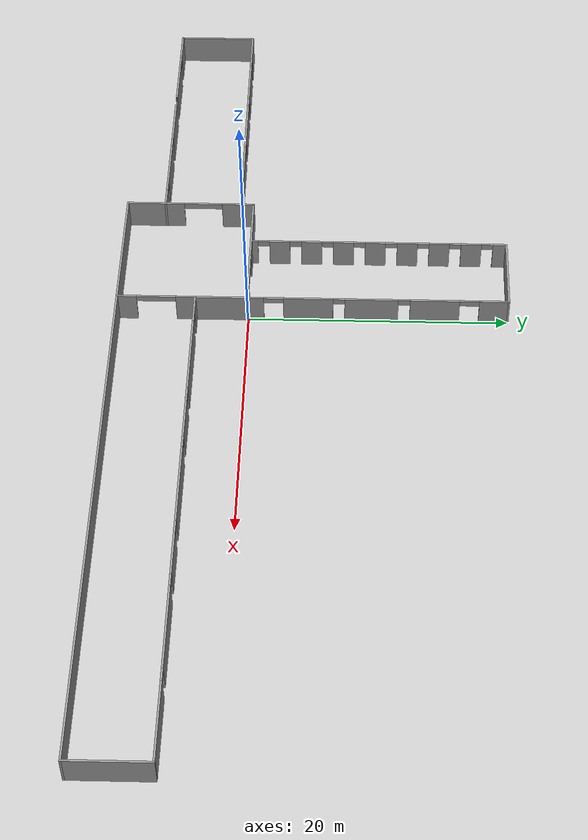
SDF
<sdf version="1.4">
 <world name="default">
  <light name="sun" type="directional">
   <pose>0 0 10 0 -0 0</pose>
   <diffuse>0.8 0.8 0.8 1</diffuse>
   <specular>0.2 0.2 0.2 1</specular>
   <attenuation>
    <range>1000</range>
    <constant>0.9</constant>
    <linear>0.01</linear>
    <quadratic>0.001</quadratic>
   </attenuation>
   <direction>-0.5 0.1 -0.9</direction>
  </light>
  <model name="ground_plane">
   <static>1</static>
   <link name="link">
    <collision name="collision">
     <geometry><plane><normal>0 0 1</normal><size>100 100</size></plane></geometry>
     <surface><friction><ode><mu>100</mu><mu2>50</mu2></ode></friction></surface>
    </collision>
    <visual name="visual">
     <cast_shadows>0</cast_shadows>
     <geometry><plane><normal>0 0 1</normal><size>100 100</size></plane></geometry>
     <material>
      <script><uri>file://media/materials/scripts/gazebo.material</uri><name>Gazebo/Grey</name></script>
     </material>
    </visual>
    <velocity_decay><linear>0</linear><angular>0</angular></velocity_decay>
   </link>
  </model>
  <physics type="ode">
   <max_step_size>0.001</max_step_size>
   <real_time_factor>1</real_time_factor>
   <real_time_update_rate>1000</real_time_update_rate>
   <gravity>0 0 -9.8</gravity>
  </physics>
  <scene><ambient>0.4 0.4 0.4 1</ambient><background>0.7 0.7 0.7 1</background><shadows>1</shadows></scene>
  <spherical_coordinates>
   <surface_model>EARTH_WGS84</surface_model>
   <latitude_deg>0</latitude_deg>
   <longitude_deg>0</longitude_deg>
   <elevation>0</elevation>
   <heading_deg>0</heading_deg>
  </spherical_coordinates>
  <model name="First_three_corridors">
   <pose>5 5 0 0 -0 0</pose>
   <link name="Wall_0">
    <pose>15 -9 0 0 -0 0</pose>
    <visual name="Wall_0_Visual_0">
     <pose>-19.2625 0 1.25 0 -0 0</pose>
     <geometry><box><size>1.625 0.15 2.5</size></box></geometry>
     <material>
      <script><uri>file://media/materials/scripts/gazebo.material</uri><name>Gazebo/Grey</name></script>
      <ambient>1 1 1 1</ambient>
     </material>
    </visual>
    <collision name="Wall_0_Collision_0">
     <geometry><box><size>1.625 0.15 2.5</size></box></geometry>
     <pose>-19.2625 0 1.25 0 -0 0</pose>
    </collision>
    <visual name="Wall_0_Visual_1">
     <pose>-14.25 0 1.25 0 -0 0</pose>
     <geometry><box><size>6.6 0.15 2.5</size></box></geometry>
     <material>
      <script><uri>file://media/materials/scripts/gazebo.material</uri><name>Gazebo/Grey</name></script>
      <ambient>1 1 1 1</ambient>
     </material>
    </visual>
    <collision name="Wall_0_Collision_1">
     <geometry><box><size>6.6 0.15 2.5</size></box></geometry>
     <pose>-14.25 0 1.25 0 -0 0</pose>
    </collision>
    <visual name="Wall_0_Visual_2">
     <pose>-8.25 0 1.25 0 -0 0</pose>
     <geometry><box><size>3.6 0.15 2.5</size></box></geometry>
     <material>
      <script><uri>file://media/materials/scripts/gazebo.material</uri><name>Gazebo/Grey</name></script>
      <ambient>1 1 1 1</ambient>
     </material>
    </visual>
    <collision name="Wall_0_Collision_2">
     <geometry><box><size>3.6 0.15 2.5</size></box></geometry>
     <pose>-8.25 0 1.25 0 -0 0</pose>
    </collision>
    <visual name="Wall_0_Visual_3">
     <pose>-2.25 0 1.25 0 -0 0</pose>
     <geometry><box><size>6.6 0.15 2.5</size></box></geometry>
     <material>
      <script><uri>file://media/materials/scripts/gazebo.material</uri><name>Gazebo/Grey</name></script>
      <ambient>1 1 1 1</ambient>
     </material>
    </visual>
    <collision name="Wall_0_Collision_3">
     <geometry><box><size>6.6 0.15 2.5</size></box></geometry>
     <pose>-2.25 0 1.25 0 -0 0</pose>
    </collision>
    <visual name="Wall_0_Visual_4">
     <pose>3.75 0 1.25 0 -0 0</pose>
     <geometry><box><size>3.6 0.15 2.5</size></box></geometry>
     <material>
      <script><uri>file://media/materials/scripts/gazebo.material</uri><name>Gazebo/Grey</name></script>
      <ambient>1 1 1 1</ambient>
     </material>
    </visual>
    <collision name="Wall_0_Collision_4">
     <geometry><box><size>3.6 0.15 2.5</size></box></geometry>
     <pose>3.75 0 1.25 0 -0 0</pose>
    </collision>
    <visual name="Wall_0_Visual_5">
     <pose>9.75 0 1.25 0 -0 0</pose>
     <geometry><box><size>6.6 0.15 2.5</size></box></geometry>
     <material>
      <script><uri>file://media/materials/scripts/gazebo.material</uri><name>Gazebo/Grey</name></script>
      <ambient>1 1 1 1</ambient>
     </material>
    </visual>
    <collision name="Wall_0_Collision_5">
     <geometry><box><size>6.6 0.15 2.5</size></box></geometry>
     <pose>9.75 0 1.25 0 -0 0</pose>
    </collision>
    <visual name="Wall_0_Visual_6">
     <pose>17.0125 0 1.25 0 -0 0</pose>
     <geometry><box><size>6.125 0.15 2.5</size></box></geometry>
     <material>
      <script><uri>file://media/materials/scripts/gazebo.material</uri><name>Gazebo/Grey</name></script>
      <ambient>1 1 1 1</ambient>
     </material>
    </visual>
    <collision name="Wall_0_Collision_6">
     <geometry><box><size>6.125 0.15 2.5</size></box></geometry>
     <pose>17.0125 0 1.25 0 -0 0</pose>
    </collision>
    <visual name="Wall_0_Visual_7">
     <pose>-18 0 2.25 0 -0 0</pose>
     <geometry><box><size>0.9 0.15 0.5</size></box></geometry>
     <material>
      <script><uri>file://media/materials/scripts/gazebo.material</uri><name>Gazebo/Grey</name></script>
      <ambient>1 1 1 1</ambient>
     </material>
    </visual>
    <collision name="Wall_0_Collision_7">
     <geometry><box><size>0.9 0.15 0.5</size></box></geometry>
     <pose>-18 0 2.25 0 -0 0</pose>
    </collision>
    <visual name="Wall_0_Visual_8">
     <pose>-10.5 0 2.25 0 -0 0</pose>
     <geometry><box><size>0.9 0.15 0.5</size></box></geometry>
     <material>
      <script><uri>file://media/materials/scripts/gazebo.material</uri><name>Gazebo/Grey</name></script>
      <ambient>1 1 1 1</ambient>
     </material>
    </visual>
    <collision name="Wall_0_Collision_8">
     <geometry><box><size>0.9 0.15 0.5</size></box></geometry>
     <pose>-10.5 0 2.25 0 -0 0</pose>
    </collision>
    <visual name="Wall_0_Visual_9">
     <pose>-6 0 2.25 0 -0 0</pose>
     <geometry><box><size>0.9 0.15 0.5</size></box></geometry>
     <material>
      <script><uri>file://media/materials/scripts/gazebo.material</uri><name>Gazebo/Grey</name></script>
      <ambient>1 1 1 1</ambient>
     </material>
    </visual>
    <collision name="Wall_0_Collision_9">
     <geometry><box><size>0.9 0.15 0.5</size></box></geometry>
     <pose>-6 0 2.25 0 -0 0</pose>
    </collision>
    <visual name="Wall_0_Visual_10">
     <pose>1.5 0 2.25 0 -0 0</pose>
     <geometry><box><size>0.9 0.15 0.5</size></box></geometry>
     <material>
      <script><uri>file://media/materials/scripts/gazebo.material</uri><name>Gazebo/Grey</name></script>
      <ambient>1 1 1 1</ambient>
     </material>
    </visual>
    <collision name="Wall_0_Collision_10">
     <geometry><box><size>0.9 0.15 0.5</size></box></geometry>
     <pose>1.5 0 2.25 0 -0 0</pose>
    </collision>
    <visual name="Wall_0_Visual_11">
     <pose>6 0 2.25 0 -0 0</pose>
     <geometry><box><size>0.9 0.15 0.5</size></box></geometry>
     <material>
      <script><uri>file://media/materials/scripts/gazebo.material</uri><name>Gazebo/Grey</name></script>
      <ambient>1 1 1 1</ambient>
     </material>
    </visual>
    <collision name="Wall_0_Collision_11">
     <geometry><box><size>0.9 0.15 0.5</size></box></geometry>
     <pose>6 0 2.25 0 -0 0</pose>
    </collision>
    <visual name="Wall_0_Visual_12">
     <pose>13.5 0 2.25 0 -0 0</pose>
     <geometry><box><size>0.9 0.15 0.5</size></box></geometry>
     <material>
      <script><uri>file://media/materials/scripts/gazebo.material</uri><name>Gazebo/Grey</name></script>
      <ambient>1 1 1 1</ambient>
     </material>
    </visual>
    <collision name="Wall_0_Collision_12">
     <geometry><box><size>0.9 0.15 0.5</size></box></geometry>
     <pose>13.5 0 2.25 0 -0 0</pose>
    </collision>
    <velocity_decay><linear>0</linear><angular>0</angular></velocity_decay>
   </link>
   <link name="Wall_1">
    <collision name="Wall_1_Collision">
     <geometry><box><size>6.15 0.15 2.5</size></box></geometry>
     <pose>0 0 1.25 0 -0 0</pose>
    </collision>
    <visual name="Wall_1_Visual">
     <pose>0 0 1.25 0 -0 0</pose>
     <geometry><box><size>6.15 0.15 2.5</size></box></geometry>
     <material>
      <script><uri>file://media/materials/scripts/gazebo.material</uri><name>Gazebo/Grey</name></script>
      <ambient>1 1 1 1</ambient>
     </material>
    </visual>
    <pose>35 -12 0 0 0 -1.5708</pose>
    <velocity_decay><linear>0</linear><angular>0</angular></velocity_decay>
   </link>
   <link name="Wall_10">
    <pose>-5 5 0 0 -0 1.5708</pose>
    <visual name="Wall_10_Visual_0">
     <pose>-9.4125 0 1.25 0 -0 0</pose>
     <geometry><box><size>1.325 0.15 2.5</size></box></geometry>
     <material>
      <script><uri>file://media/materials/scripts/gazebo.material</uri><name>Gazebo/Grey</name></script>
      <ambient>1 1 1 1</ambient>
     </material>
    </visual>
    <collision name="Wall_10_Collision_0">
     <geometry><box><size>1.325 0.15 2.5</size></box></geometry>
     <pose>-9.4125 0 1.25 0 -0 0</pose>
    </collision>
    <visual name="Wall_10_Visual_1">
     <pose>-5.35 0 1.25 0 -0 0</pose>
     <geometry><box><size>3.8 0.15 2.5</size></box></geometry>
     <material>
      <script><uri>file://media/materials/scripts/gazebo.material</uri><name>Gazebo/Grey</name></script>
      <ambient>1 1 1 1</ambient>
     </material>
    </visual>
    <collision name="Wall_10_Collision_1">
     <geometry><box><size>3.8 0.15 2.5</size></box></geometry>
     <pose>-5.35 0 1.25 0 -0 0</pose>
    </collision>
    <visual name="Wall_10_Visual_2">
     <pose>-0.5 0 1.25 0 -0 0</pose>
     <geometry><box><size>4.1 0.15 2.5</size></box></geometry>
     <material>
      <script><uri>file://media/materials/scripts/gazebo.material</uri><name>Gazebo/Grey</name></script>
      <ambient>1 1 1 1</ambient>
     </material>
    </visual>
    <collision name="Wall_10_Collision_2">
     <geometry><box><size>4.1 0.15 2.5</size></box></geometry>
     <pose>-0.5 0 1.25 0 -0 0</pose>
    </collision>
    <visual name="Wall_10_Visual_3">
     <pose>4.35 0 1.25 0 -0 0</pose>
     <geometry><box><size>3.8 0.15 2.5</size></box></geometry>
     <material>
      <script><uri>file://media/materials/scripts/gazebo.material</uri><name>Gazebo/Grey</name></script>
      <ambient>1 1 1 1</ambient>
     </material>
    </visual>
    <collision name="Wall_10_Collision_3">
     <geometry><box><size>3.8 0.15 2.5</size></box></geometry>
     <pose>4.35 0 1.25 0 -0 0</pose>
    </collision>
    <visual name="Wall_10_Visual_4">
     <pose>8.9125 0 1.25 0 -0 0</pose>
     <geometry><box><size>2.325 0.15 2.5</size></box></geometry>
     <material>
      <script><uri>file://media/materials/scripts/gazebo.material</uri><name>Gazebo/Grey</name></script>
      <ambient>1 1 1 1</ambient>
     </material>
    </visual>
    <collision name="Wall_10_Collision_4">
     <geometry><box><size>2.325 0.15 2.5</size></box></geometry>
     <pose>8.9125 0 1.25 0 -0 0</pose>
    </collision>
    <visual name="Wall_10_Visual_5">
     <pose>-8 0 2.25 0 -0 0</pose>
     <geometry><box><size>1.5 0.15 0.5</size></box></geometry>
     <material>
      <script><uri>file://media/materials/scripts/gazebo.material</uri><name>Gazebo/Grey</name></script>
      <ambient>1 1 1 1</ambient>
     </material>
    </visual>
    <collision name="Wall_10_Collision_5">
     <geometry><box><size>1.5 0.15 0.5</size></box></geometry>
     <pose>-8 0 2.25 0 -0 0</pose>
    </collision>
    <visual name="Wall_10_Visual_6">
     <pose>-3 0 2.25 0 -0 0</pose>
     <geometry><box><size>0.9 0.15 0.5</size></box></geometry>
     <material>
      <script><uri>file://media/materials/scripts/gazebo.material</uri><name>Gazebo/Grey</name></script>
      <ambient>1 1 1 1</ambient>
     </material>
    </visual>
    <collision name="Wall_10_Collision_6">
     <geometry><box><size>0.9 0.15 0.5</size></box></geometry>
     <pose>-3 0 2.25 0 -0 0</pose>
    </collision>
    <visual name="Wall_10_Visual_7">
     <pose>2 0 2.25 0 -0 0</pose>
     <geometry><box><size>0.9 0.15 0.5</size></box></geometry>
     <material>
      <script><uri>file://media/materials/scripts/gazebo.material</uri><name>Gazebo/Grey</name></script>
      <ambient>1 1 1 1</ambient>
     </material>
    </visual>
    <collision name="Wall_10_Collision_7">
     <geometry><box><size>0.9 0.15 0.5</size></box></geometry>
     <pose>2 0 2.25 0 -0 0</pose>
    </collision>
    <visual name="Wall_10_Visual_8">
     <pose>7 0 2.25 0 -0 0</pose>
     <geometry><box><size>1.5 0.15 0.5</size></box></geometry>
     <material>
      <script><uri>file://media/materials/scripts/gazebo.material</uri><name>Gazebo/Grey</name></script>
      <ambient>1 1 1 1</ambient>
     </material>
    </visual>
    <collision name="Wall_10_Collision_8">
     <geometry><box><size>1.5 0.15 0.5</size></box></geometry>
     <pose>7 0 2.25 0 -0 0</pose>
    </collision>
    <velocity_decay><linear>0</linear><angular>0</angular></velocity_decay>
   </link>
   <link name="Wall_11">
    <collision name="Wall_11_Collision">
     <geometry><box><size>6.15 0.15 2.5</size></box></geometry>
     <pose>0 0 1.25 0 -0 0</pose>
    </collision>
    <visual name="Wall_11_Visual">
     <pose>0 0 1.25 0 -0 0</pose>
     <geometry><box><size>6.15 0.15 2.5</size></box></geometry>
     <material>
      <script><uri>file://media/materials/scripts/gazebo.material</uri><name>Gazebo/Grey</name></script>
      <ambient>1 1 1 1</ambient>
     </material>
    </visual>
    <pose>-8 15 0 0 -0 3.14159</pose>
    <velocity_decay><linear>0</linear><angular>0</angular></velocity_decay>
   </link>
   <link name="Wall_12">
    <pose>-11 5 0 0 0 -1.5708</pose>
    <visual name="Wall_12_Visual_0">
     <pose>-9.5125 0 1.25 0 -0 0</pose>
     <geometry><box><size>1.125 0.15 2.5</size></box></geometry>
     <material>
      <script><uri>file://media/materials/scripts/gazebo.material</uri><name>Gazebo/Grey</name></script>
      <ambient>1 1 1 1</ambient>
     </material>
    </visual>
    <collision name="Wall_12_Collision_0">
     <geometry><box><size>1.125 0.15 2.5</size></box></geometry>
     <pose>-9.5125 0 1.25 0 -0 0</pose>
    </collision>
    <visual name="Wall_12_Visual_1">
     <pose>-7.25 0 1.25 0 -0 0</pose>
     <geometry><box><size>1.6 0.15 2.5</size></box></geometry>
     <material>
      <script><uri>file://media/materials/scripts/gazebo.material</uri><name>Gazebo/Grey</name></script>
      <ambient>1 1 1 1</ambient>
     </material>
    </visual>
    <collision name="Wall_12_Collision_1">
     <geometry><box><size>1.6 0.15 2.5</size></box></geometry>
     <pose>-7.25 0 1.25 0 -0 0</pose>
    </collision>
    <visual name="Wall_12_Visual_2">
     <pose>-4.75 0 1.25 0 -0 0</pose>
     <geometry><box><size>1.6 0.15 2.5</size></box></geometry>
     <material>
      <script><uri>file://media/materials/scripts/gazebo.material</uri><name>Gazebo/Grey</name></script>
      <ambient>1 1 1 1</ambient>
     </material>
    </visual>
    <collision name="Wall_12_Collision_2">
     <geometry><box><size>1.6 0.15 2.5</size></box></geometry>
     <pose>-4.75 0 1.25 0 -0 0</pose>
    </collision>
    <visual name="Wall_12_Visual_3">
     <pose>-2.25 0 1.25 0 -0 0</pose>
     <geometry><box><size>1.6 0.15 2.5</size></box></geometry>
     <material>
      <script><uri>file://media/materials/scripts/gazebo.material</uri><name>Gazebo/Grey</name></script>
      <ambient>1 1 1 1</ambient>
     </material>
    </visual>
    <collision name="Wall_12_Collision_3">
     <geometry><box><size>1.6 0.15 2.5</size></box></geometry>
     <pose>-2.25 0 1.25 0 -0 0</pose>
    </collision>
    <visual name="Wall_12_Visual_4">
     <pose>0.25 0 1.25 0 -0 0</pose>
     <geometry><box><size>1.6 0.15 2.5</size></box></geometry>
     <material>
      <script><uri>file://media/materials/scripts/gazebo.material</uri><name>Gazebo/Grey</name></script>
      <ambient>1 1 1 1</ambient>
     </material>
    </visual>
    <collision name="Wall_12_Collision_4">
     <geometry><box><size>1.6 0.15 2.5</size></box></geometry>
     <pose>0.25 0 1.25 0 -0 0</pose>
    </collision>
    <visual name="Wall_12_Visual_5">
     <pose>2.75 0 1.25 0 -0 0</pose>
     <geometry><box><size>1.6 0.15 2.5</size></box></geometry>
     <material>
      <script><uri>file://media/materials/scripts/gazebo.material</uri><name>Gazebo/Grey</name></script>
      <ambient>1 1 1 1</ambient>
     </material>
    </visual>
    <collision name="Wall_12_Collision_5">
     <geometry><box><size>1.6 0.15 2.5</size></box></geometry>
     <pose>2.75 0 1.25 0 -0 0</pose>
    </collision>
    <visual name="Wall_12_Visual_6">
     <pose>5.25 0 1.25 0 -0 0</pose>
     <geometry><box><size>1.6 0.15 2.5</size></box></geometry>
     <material>
      <script><uri>file://media/materials/scripts/gazebo.material</uri><name>Gazebo/Grey</name></script>
      <ambient>1 1 1 1</ambient>
     </material>
    </visual>
    <collision name="Wall_12_Collision_6">
     <geometry><box><size>1.6 0.15 2.5</size></box></geometry>
     <pose>5.25 0 1.25 0 -0 0</pose>
    </collision>
    <visual name="Wall_12_Visual_7">
     <pose>7.75 0 1.25 0 -0 0</pose>
     <geometry><box><size>1.6 0.15 2.5</size></box></geometry>
     <material>
      <script><uri>file://media/materials/scripts/gazebo.material</uri><name>Gazebo/Grey</name></script>
      <ambient>1 1 1 1</ambient>
     </material>
    </visual>
    <collision name="Wall_12_Collision_7">
     <geometry><box><size>1.6 0.15 2.5</size></box></geometry>
     <pose>7.75 0 1.25 0 -0 0</pose>
    </collision>
    <visual name="Wall_12_Visual_8">
     <pose>9.7625 0 1.25 0 -0 0</pose>
     <geometry><box><size>0.625 0.15 2.5</size></box></geometry>
     <material>
      <script><uri>file://media/materials/scripts/gazebo.material</uri><name>Gazebo/Grey</name></script>
      <ambient>1 1 1 1</ambient>
     </material>
    </visual>
    <collision name="Wall_12_Collision_8">
     <geometry><box><size>0.625 0.15 2.5</size></box></geometry>
     <pose>9.7625 0 1.25 0 -0 0</pose>
    </collision>
    <visual name="Wall_12_Visual_9">
     <pose>-8.5 0 2.25 0 -0 0</pose>
     <geometry><box><size>0.9 0.15 0.5</size></box></geometry>
     <material>
      <script><uri>file://media/materials/scripts/gazebo.material</uri><name>Gazebo/Grey</name></script>
      <ambient>1 1 1 1</ambient>
     </material>
    </visual>
    <collision name="Wall_12_Collision_9">
     <geometry><box><size>0.9 0.15 0.5</size></box></geometry>
     <pose>-8.5 0 2.25 0 -0 0</pose>
    </collision>
    <visual name="Wall_12_Visual_10">
     <pose>-6 0 2.25 0 -0 0</pose>
     <geometry><box><size>0.9 0.15 0.5</size></box></geometry>
     <material>
      <script><uri>file://media/materials/scripts/gazebo.material</uri><name>Gazebo/Grey</name></script>
      <ambient>1 1 1 1</ambient>
     </material>
    </visual>
    <collision name="Wall_12_Collision_10">
     <geometry><box><size>0.9 0.15 0.5</size></box></geometry>
     <pose>-6 0 2.25 0 -0 0</pose>
    </collision>
    <visual name="Wall_12_Visual_11">
     <pose>-3.5 0 2.25 0 -0 0</pose>
     <geometry><box><size>0.9 0.15 0.5</size></box></geometry>
     <material>
      <script><uri>file://media/materials/scripts/gazebo.material</uri><name>Gazebo/Grey</name></script>
      <ambient>1 1 1 1</ambient>
     </material>
    </visual>
    <collision name="Wall_12_Collision_11">
     <geometry><box><size>0.9 0.15 0.5</size></box></geometry>
     <pose>-3.5 0 2.25 0 -0 0</pose>
    </collision>
    <visual name="Wall_12_Visual_12">
     <pose>-1 0 2.25 0 -0 0</pose>
     <geometry><box><size>0.9 0.15 0.5</size></box></geometry>
     <material>
      <script><uri>file://media/materials/scripts/gazebo.material</uri><name>Gazebo/Grey</name></script>
      <ambient>1 1 1 1</ambient>
     </material>
    </visual>
    <collision name="Wall_12_Collision_12">
     <geometry><box><size>0.9 0.15 0.5</size></box></geometry>
     <pose>-1 0 2.25 0 -0 0</pose>
    </collision>
    <visual name="Wall_12_Visual_13">
     <pose>1.5 0 2.25 0 -0 0</pose>
     <geometry><box><size>0.9 0.15 0.5</size></box></geometry>
     <material>
      <script><uri>file://media/materials/scripts/gazebo.material</uri><name>Gazebo/Grey</name></script>
      <ambient>1 1 1 1</ambient>
     </material>
    </visual>
    <collision name="Wall_12_Collision_13">
     <geometry><box><size>0.9 0.15 0.5</size></box></geometry>
     <pose>1.5 0 2.25 0 -0 0</pose>
    </collision>
    <visual name="Wall_12_Visual_14">
     <pose>4 0 2.25 0 -0 0</pose>
     <geometry><box><size>0.9 0.15 0.5</size></box></geometry>
     <material>
      <script><uri>file://media/materials/scripts/gazebo.material</uri><name>Gazebo/Grey</name></script>
      <ambient>1 1 1 1</ambient>
     </material>
    </visual>
    <collision name="Wall_12_Collision_14">
     <geometry><box><size>0.9 0.15 0.5</size></box></geometry>
     <pose>4 0 2.25 0 -0 0</pose>
    </collision>
    <visual name="Wall_12_Visual_15">
     <pose>6.5 0 2.25 0 -0 0</pose>
     <geometry><box><size>0.9 0.15 0.5</size></box></geometry>
     <material>
      <script><uri>file://media/materials/scripts/gazebo.material</uri><name>Gazebo/Grey</name></script>
      <ambient>1 1 1 1</ambient>
     </material>
    </visual>
    <collision name="Wall_12_Collision_15">
     <geometry><box><size>0.9 0.15 0.5</size></box></geometry>
     <pose>6.5 0 2.25 0 -0 0</pose>
    </collision>
    <visual name="Wall_12_Visual_16">
     <pose>9 0 2.25 0 -0 0</pose>
     <geometry><box><size>0.9 0.15 0.5</size></box></geometry>
     <material>
      <script><uri>file://media/materials/scripts/gazebo.material</uri><name>Gazebo/Grey</name></script>
      <ambient>1 1 1 1</ambient>
     </material>
    </visual>
    <collision name="Wall_12_Collision_16">
     <geometry><box><size>0.9 0.15 0.5</size></box></geometry>
     <pose>9 0 2.25 0 -0 0</pose>
    </collision>
    <velocity_decay><linear>0</linear><angular>0</angular></velocity_decay>
   </link>
   <link name="Wall_14">
    <pose>-25 -6 0 0 -0 3.14159</pose>
    <visual name="Wall_14_Visual_0">
     <pose>-6.7625 0 1.25 0 -0 0</pose>
     <geometry><box><size>6.625 0.15 2.5</size></box></geometry>
     <material>
      <script><uri>file://media/materials/scripts/gazebo.material</uri><name>Gazebo/Grey</name></script>
      <ambient>1 1 1 1</ambient>
     </material>
    </visual>
    <collision name="Wall_14_Collision_0">
     <geometry><box><size>6.625 0.15 2.5</size></box></geometry>
     <pose>-6.7625 0 1.25 0 -0 0</pose>
    </collision>
    <visual name="Wall_14_Visual_1">
     <pose>-0.5 0 1.25 0 -0 0</pose>
     <geometry><box><size>4.1 0.15 2.5</size></box></geometry>
     <material>
      <script><uri>file://media/materials/scripts/gazebo.material</uri><name>Gazebo/Grey</name></script>
      <ambient>1 1 1 1</ambient>
     </material>
    </visual>
    <collision name="Wall_14_Collision_1">
     <geometry><box><size>4.1 0.15 2.5</size></box></geometry>
     <pose>-0.5 0 1.25 0 -0 0</pose>
    </collision>
    <visual name="Wall_14_Visual_2">
     <pose>4.5 0 1.25 0 -0 0</pose>
     <geometry><box><size>4.1 0.15 2.5</size></box></geometry>
     <material>
      <script><uri>file://media/materials/scripts/gazebo.material</uri><name>Gazebo/Grey</name></script>
      <ambient>1 1 1 1</ambient>
     </material>
    </visual>
    <collision name="Wall_14_Collision_2">
     <geometry><box><size>4.1 0.15 2.5</size></box></geometry>
     <pose>4.5 0 1.25 0 -0 0</pose>
    </collision>
    <visual name="Wall_14_Visual_3">
     <pose>8.7625 0 1.25 0 -0 0</pose>
     <geometry><box><size>2.625 0.15 2.5</size></box></geometry>
     <material>
      <script><uri>file://media/materials/scripts/gazebo.material</uri><name>Gazebo/Grey</name></script>
      <ambient>1 1 1 1</ambient>
     </material>
    </visual>
    <collision name="Wall_14_Collision_3">
     <geometry><box><size>2.625 0.15 2.5</size></box></geometry>
     <pose>8.7625 0 1.25 0 -0 0</pose>
    </collision>
    <visual name="Wall_14_Visual_4">
     <pose>-3 0 2.25 0 -0 0</pose>
     <geometry><box><size>0.9 0.15 0.5</size></box></geometry>
     <material>
      <script><uri>file://media/materials/scripts/gazebo.material</uri><name>Gazebo/Grey</name></script>
      <ambient>1 1 1 1</ambient>
     </material>
    </visual>
    <collision name="Wall_14_Collision_4">
     <geometry><box><size>0.9 0.15 0.5</size></box></geometry>
     <pose>-3 0 2.25 0 -0 0</pose>
    </collision>
    <visual name="Wall_14_Visual_5">
     <pose>2 0 2.25 0 -0 0</pose>
     <geometry><box><size>0.9 0.15 0.5</size></box></geometry>
     <material>
      <script><uri>file://media/materials/scripts/gazebo.material</uri><name>Gazebo/Grey</name></script>
      <ambient>1 1 1 1</ambient>
     </material>
    </visual>
    <collision name="Wall_14_Collision_5">
     <geometry><box><size>0.9 0.15 0.5</size></box></geometry>
     <pose>2 0 2.25 0 -0 0</pose>
    </collision>
    <visual name="Wall_14_Visual_6">
     <pose>7 0 2.25 0 -0 0</pose>
     <geometry><box><size>0.9 0.15 0.5</size></box></geometry>
     <material>
      <script><uri>file://media/materials/scripts/gazebo.material</uri><name>Gazebo/Grey</name></script>
      <ambient>1 1 1 1</ambient>
     </material>
    </visual>
    <collision name="Wall_14_Collision_6">
     <geometry><box><size>0.9 0.15 0.5</size></box></geometry>
     <pose>7 0 2.25 0 -0 0</pose>
    </collision>
    <velocity_decay><linear>0</linear><angular>0</angular></velocity_decay>
   </link>
   <link name="Wall_15">
    <collision name="Wall_15_Collision">
     <geometry><box><size>6.15 0.15 2.5</size></box></geometry>
     <pose>0 0 1.25 0 -0 0</pose>
    </collision>
    <visual name="Wall_15_Visual">
     <pose>0 0 1.25 0 -0 0</pose>
     <geometry><box><size>6.15 0.15 2.5</size></box></geometry>
     <material>
      <script><uri>file://media/materials/scripts/gazebo.material</uri><name>Gazebo/Grey</name></script>
      <ambient>1 1 1 1</ambient>
     </material>
    </visual>
    <pose>-35 -9 0 0 0 -1.5708</pose>
    <velocity_decay><linear>0</linear><angular>0</angular></velocity_decay>
   </link>
   <link name="Wall_16">
    <pose>-25 -12 0 0 -0 0</pose>
    <visual name="Wall_16_Visual_0">
     <pose>-8.7625 0 1.25 0 -0 0</pose>
     <geometry><box><size>2.625 0.15 2.5</size></box></geometry>
     <material>
      <script><uri>file://media/materials/scripts/gazebo.material</uri><name>Gazebo/Grey</name></script>
      <ambient>1 1 1 1</ambient>
     </material>
    </visual>
    <collision name="Wall_16_Collision_0">
     <geometry><box><size>2.625 0.15 2.5</size></box></geometry>
     <pose>-8.7625 0 1.25 0 -0 0</pose>
    </collision>
    <visual name="Wall_16_Visual_1">
     <pose>-4.5 0 1.25 0 -0 0</pose>
     <geometry><box><size>4.1 0.15 2.5</size></box></geometry>
     <material>
      <script><uri>file://media/materials/scripts/gazebo.material</uri><name>Gazebo/Grey</name></script>
      <ambient>1 1 1 1</ambient>
     </material>
    </visual>
    <collision name="Wall_16_Collision_1">
     <geometry><box><size>4.1 0.15 2.5</size></box></geometry>
     <pose>-4.5 0 1.25 0 -0 0</pose>
    </collision>
    <visual name="Wall_16_Visual_2">
     <pose>0.5 0 1.25 0 -0 0</pose>
     <geometry><box><size>4.1 0.15 2.5</size></box></geometry>
     <material>
      <script><uri>file://media/materials/scripts/gazebo.material</uri><name>Gazebo/Grey</name></script>
      <ambient>1 1 1 1</ambient>
     </material>
    </visual>
    <collision name="Wall_16_Collision_2">
     <geometry><box><size>4.1 0.15 2.5</size></box></geometry>
     <pose>0.5 0 1.25 0 -0 0</pose>
    </collision>
    <visual name="Wall_16_Visual_3">
     <pose>5.5 0 1.25 0 -0 0</pose>
     <geometry><box><size>4.1 0.15 2.5</size></box></geometry>
     <material>
      <script><uri>file://media/materials/scripts/gazebo.material</uri><name>Gazebo/Grey</name></script>
      <ambient>1 1 1 1</ambient>
     </material>
    </visual>
    <collision name="Wall_16_Collision_3">
     <geometry><box><size>4.1 0.15 2.5</size></box></geometry>
     <pose>5.5 0 1.25 0 -0 0</pose>
    </collision>
    <visual name="Wall_16_Visual_4">
     <pose>9.2625 0 1.25 0 -0 0</pose>
     <geometry><box><size>1.625 0.15 2.5</size></box></geometry>
     <material>
      <script><uri>file://media/materials/scripts/gazebo.material</uri><name>Gazebo/Grey</name></script>
      <ambient>1 1 1 1</ambient>
     </material>
    </visual>
    <collision name="Wall_16_Collision_4">
     <geometry><box><size>1.625 0.15 2.5</size></box></geometry>
     <pose>9.2625 0 1.25 0 -0 0</pose>
    </collision>
    <visual name="Wall_16_Visual_5">
     <pose>-7 0 2.25 0 -0 0</pose>
     <geometry><box><size>0.9 0.15 0.5</size></box></geometry>
     <material>
      <script><uri>file://media/materials/scripts/gazebo.material</uri><name>Gazebo/Grey</name></script>
      <ambient>1 1 1 1</ambient>
     </material>
    </visual>
    <collision name="Wall_16_Collision_5">
     <geometry><box><size>0.9 0.15 0.5</size></box></geometry>
     <pose>-7 0 2.25 0 -0 0</pose>
    </collision>
    <visual name="Wall_16_Visual_6">
     <pose>-2.45 0 2.25 0 -0 0</pose>
     <geometry><box><size>0 0.15 0.5</size></box></geometry>
     <material>
      <script><uri>file://media/materials/scripts/gazebo.material</uri><name>Gazebo/Grey</name></script>
      <ambient>1 1 1 1</ambient>
     </material>
    </visual>
    <collision name="Wall_16_Collision_6">
     <geometry><box><size>0 0.15 0.5</size></box></geometry>
     <pose>-2.45 0 2.25 0 -0 0</pose>
    </collision>
    <visual name="Wall_16_Visual_7">
     <pose>3 0 2.25 0 -0 0</pose>
     <geometry><box><size>0.9 0.15 0.5</size></box></geometry>
     <material>
      <script><uri>file://media/materials/scripts/gazebo.material</uri><name>Gazebo/Grey</name></script>
      <ambient>1 1 1 1</ambient>
     </material>
    </visual>
    <collision name="Wall_16_Collision_7">
     <geometry><box><size>0.9 0.15 0.5</size></box></geometry>
     <pose>3 0 2.25 0 -0 0</pose>
    </collision>
    <visual name="Wall_16_Visual_8">
     <pose>8 0 2.25 0 -0 0</pose>
     <geometry><box><size>0.9 0.15 0.5</size></box></geometry>
     <material>
      <script><uri>file://media/materials/scripts/gazebo.material</uri><name>Gazebo/Grey</name></script>
      <ambient>1 1 1 1</ambient>
     </material>
    </visual>
    <collision name="Wall_16_Collision_8">
     <geometry><box><size>0.9 0.15 0.5</size></box></geometry>
     <pose>8 0 2.25 0 -0 0</pose>
    </collision>
    <velocity_decay><linear>0</linear><angular>0</angular></velocity_decay>
   </link>
   <link name="Wall_2">
    <collision name="Wall_2_Collision">
     <geometry><box><size>40.15 0.15 2.5</size></box></geometry>
     <pose>0 0 1.25 0 -0 0</pose>
    </collision>
    <visual name="Wall_2_Visual">
     <pose>0 0 1.25 0 -0 0</pose>
     <geometry><box><size>40.15 0.15 2.5</size></box></geometry>
     <material>
      <script><uri>file://media/materials/scripts/gazebo.material</uri><name>Gazebo/Grey</name></script>
      <ambient>1 1 1 1</ambient>
     </material>
    </visual>
    <pose>15 -15 0 0 -0 3.14159</pose>
    <velocity_decay><linear>0</linear><angular>0</angular></velocity_decay>
   </link>
   <link name="Wall_3">
    <pose>-5 -12 0 0 -0 1.5708</pose>
    <visual name="Wall_3_Visual_0">
     <pose>-2.2875 0 1.25 0 -0 0</pose>
     <geometry><box><size>1.575 0.15 2.5</size></box></geometry>
     <material>
      <script><uri>file://media/materials/scripts/gazebo.material</uri><name>Gazebo/Grey</name></script>
      <ambient>1 1 1 1</ambient>
     </material>
    </visual>
    <collision name="Wall_3_Collision_0">
     <geometry><box><size>1.575 0.15 2.5</size></box></geometry>
     <pose>-2.2875 0 1.25 0 -0 0</pose>
    </collision>
    <visual name="Wall_3_Visual_1">
     <pose>2.2875 0 1.25 0 -0 0</pose>
     <geometry><box><size>1.575 0.15 2.5</size></box></geometry>
     <material>
      <script><uri>file://media/materials/scripts/gazebo.material</uri><name>Gazebo/Grey</name></script>
      <ambient>1 1 1 1</ambient>
     </material>
    </visual>
    <collision name="Wall_3_Collision_1">
     <geometry><box><size>1.575 0.15 2.5</size></box></geometry>
     <pose>2.2875 0 1.25 0 -0 0</pose>
    </collision>
    <visual name="Wall_3_Visual_2">
     <pose>0 0 2.25 0 -0 0</pose>
     <geometry><box><size>3 0.15 0.5</size></box></geometry>
     <material>
      <script><uri>file://media/materials/scripts/gazebo.material</uri><name>Gazebo/Grey</name></script>
      <ambient>1 1 1 1</ambient>
     </material>
    </visual>
    <collision name="Wall_3_Collision_2">
     <geometry><box><size>3 0.15 0.5</size></box></geometry>
     <pose>0 0 2.25 0 -0 0</pose>
    </collision>
    <velocity_decay><linear>0</linear><angular>0</angular></velocity_decay>
   </link>
   <link name="Wall_5">
    <collision name="Wall_5_Collision">
     <geometry><box><size>4.15 0.15 2.5</size></box></geometry>
     <pose>0 0 1.25 0 -0 0</pose>
    </collision>
    <visual name="Wall_5_Visual">
     <pose>0 0 1.25 0 -0 0</pose>
     <geometry><box><size>4.15 0.15 2.5</size></box></geometry>
     <material>
      <script><uri>file://media/materials/scripts/gazebo.material</uri><name>Gazebo/Grey</name></script>
      <ambient>1 1 1 1</ambient>
     </material>
    </visual>
    <pose>-5 -7 0 0 -0 1.5708</pose>
    <velocity_decay><linear>0</linear><angular>0</angular></velocity_decay>
   </link>
   <link name="Wall_6">
    <pose>-10 -5 0 0 -0 3.14159</pose>
    <visual name="Wall_6_Visual_0">
     <pose>-4.2875 0 1.25 0 -0 0</pose>
     <geometry><box><size>1.575 0.15 2.5</size></box></geometry>
     <material>
      <script><uri>file://media/materials/scripts/gazebo.material</uri><name>Gazebo/Grey</name></script>
      <ambient>1 1 1 1</ambient>
     </material>
    </visual>
    <collision name="Wall_6_Collision_0">
     <geometry><box><size>1.575 0.15 2.5</size></box></geometry>
     <pose>-4.2875 0 1.25 0 -0 0</pose>
    </collision>
    <visual name="Wall_6_Visual_1">
     <pose>2.2875 0 1.25 0 -0 0</pose>
     <geometry><box><size>5.575 0.15 2.5</size></box></geometry>
     <material>
      <script><uri>file://media/materials/scripts/gazebo.material</uri><name>Gazebo/Grey</name></script>
      <ambient>1 1 1 1</ambient>
     </material>
    </visual>
    <collision name="Wall_6_Collision_1">
     <geometry><box><size>5.575 0.15 2.5</size></box></geometry>
     <pose>2.2875 0 1.25 0 -0 0</pose>
    </collision>
    <visual name="Wall_6_Visual_2">
     <pose>-2 0 2.25 0 -0 0</pose>
     <geometry><box><size>3 0.15 0.5</size></box></geometry>
     <material>
      <script><uri>file://media/materials/scripts/gazebo.material</uri><name>Gazebo/Grey</name></script>
      <ambient>1 1 1 1</ambient>
     </material>
    </visual>
    <collision name="Wall_6_Collision_2">
     <geometry><box><size>3 0.15 0.5</size></box></geometry>
     <pose>-2 0 2.25 0 -0 0</pose>
    </collision>
    <velocity_decay><linear>0</linear><angular>0</angular></velocity_decay>
   </link>
   <link name="Wall_7">
    <pose>-15 -10 0 0 0 -1.5708</pose>
    <visual name="Wall_7_Visual_0">
     <pose>-3.7875 0 1.25 0 -0 0</pose>
     <geometry><box><size>2.575 0.15 2.5</size></box></geometry>
     <material>
      <script><uri>file://media/materials/scripts/gazebo.material</uri><name>Gazebo/Grey</name></script>
      <ambient>1 1 1 1</ambient>
     </material>
    </visual>
    <collision name="Wall_7_Collision_0">
     <geometry><box><size>2.575 0.15 2.5</size></box></geometry>
     <pose>-3.7875 0 1.25 0 -0 0</pose>
    </collision>
    <visual name="Wall_7_Visual_1">
     <pose>2.7875 0 1.25 0 -0 0</pose>
     <geometry><box><size>4.575 0.15 2.5</size></box></geometry>
     <material>
      <script><uri>file://media/materials/scripts/gazebo.material</uri><name>Gazebo/Grey</name></script>
      <ambient>1 1 1 1</ambient>
     </material>
    </visual>
    <collision name="Wall_7_Collision_1">
     <geometry><box><size>4.575 0.15 2.5</size></box></geometry>
     <pose>2.7875 0 1.25 0 -0 0</pose>
    </collision>
    <visual name="Wall_7_Visual_2">
     <pose>-1 0 2.25 0 -0 0</pose>
     <geometry><box><size>3 0.15 0.5</size></box></geometry>
     <material>
      <script><uri>file://media/materials/scripts/gazebo.material</uri><name>Gazebo/Grey</name></script>
      <ambient>1 1 1 1</ambient>
     </material>
    </visual>
    <collision name="Wall_7_Collision_2">
     <geometry><box><size>3 0.15 0.5</size></box></geometry>
     <pose>-1 0 2.25 0 -0 0</pose>
    </collision>
    <velocity_decay><linear>0</linear><angular>0</angular></velocity_decay>
   </link>
   <link name="Wall_8">
    <collision name="Wall_8_Collision">
     <geometry><box><size>10.15 0.15 2.5</size></box></geometry>
     <pose>0 0 1.25 0 -0 0</pose>
    </collision>
    <visual name="Wall_8_Visual">
     <pose>0 0 1.25 0 -0 0</pose>
     <geometry><box><size>10.15 0.15 2.5</size></box></geometry>
     <material>
      <script><uri>file://media/materials/scripts/gazebo.material</uri><name>Gazebo/Grey</name></script>
      <ambient>1 1 1 1</ambient>
     </material>
    </visual>
    <pose>-10 -15 0 0 -0 0</pose>
    <velocity_decay><linear>0</linear><angular>0</angular></velocity_decay>
   </link>
   <static>1</static>
  </model>
 </world>
</sdf>
